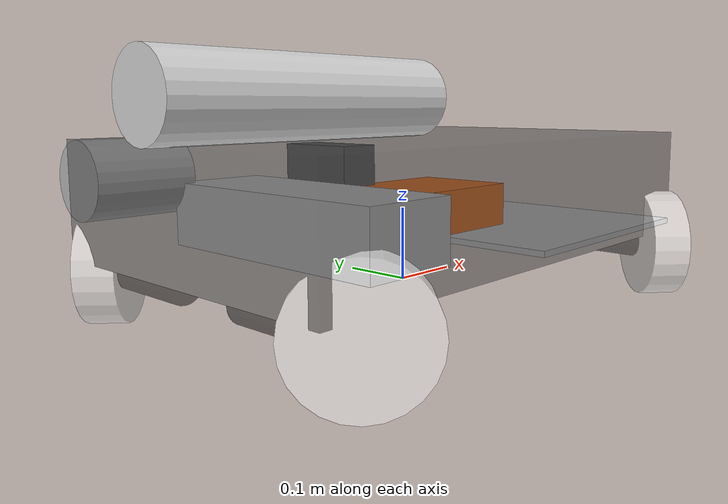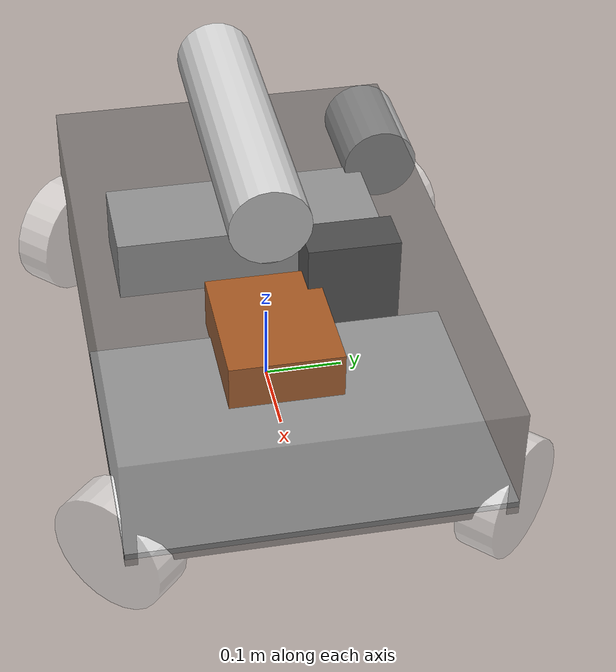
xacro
<?xml version="1.0"?>
<robot xmlns:sensor="http://playerstage.sourceforge.net/gazebo/xmlschema/#sensor"
       xmlns:controller="http://playerstage.sourceforge.net/gazebo/xmlschema/#controller"
       xmlns:interface="http://playerstage.sourceforge.net/gazebo/xmlschema/#interface"
       xmlns:xacro="http://ros.org/wiki/xacro" name="asbase">
      <xacro:include filename="$(find asdesc)/urdf/base/asbase.xacro" />
</robot>

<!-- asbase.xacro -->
<robot xmlns:sensor="http://playerstage.sourceforge.net/gazebo/xmlschema/#sensor"
	xmlns:controller="http://playerstage.sourceforge.net/gazebo/xmlschema/#controller"
	xmlns:interface="http://playerstage.sourceforge.net/gazebo/xmlschema/#interface"
	xmlns:xacro="http://ros.org/wiki/xacro">

	<!-- Link Dimensions -->
	<!-- base_link -->
	<xacro:property name="base_link_dx" value="0.72"/>
	<xacro:property name="base_link_dy" value="0.455"/>
	<xacro:property name="base_link_dz" value="0.15"/>
	<!-- 2.8kg raw frame. 3.5 estimate  full -->
	<xacro:property name="base_link_m" value="3.5"/>
	<!-- alluminium frame only -->

	<!-- wheel_link -->
	<xacro:property name="wheel_link_r" value="${0.152/2}"/>
	<xacro:property name="wheel_link_m" value="0.6"/>
	<xacro:property name="wheel_roller_angle" value="${45*M_PI/180}"/>

	<!-- motor_gearbox_link -->
	<xacro:property name="motor_link_r" value="0.025"/>
	<!-- motor normal 12 cm. But with coupler +5cm -->
	<xacro:property name="motor_link_h" value="${0.12+0.05}"/>
	<xacro:property name="motor_link_m" value="${0.14 +0.36}"/>
	<!-- True is 1460mNm -->
	<xacro:property name="motor_effort_limit" value="1.4"/>
	<!-- True is 6110rpm -->
	<xacro:property name="motor_velocity_limit" value="600"/>
	<xacro:property name="gearbox_reduction" value="91"/>

	<!-- offsets -->
	<xacro:property name="motor_wheel_assemply_xyz_fl" value="${base_link_dx/2-0.05} ${base_link_dy/2 -motor_link_h/2} -${base_link_dz/2 + motor_link_r/2}"/>
	<xacro:property name="motor_wheel_assemply_rpy_fl" value="${- M_PI/2} 0 0"/>
	<xacro:property name="motor_wheel_assemply_xyz_fr" value="${base_link_dx/2-0.05} -${base_link_dy/2 -motor_link_h/2} -${base_link_dz/2 + motor_link_r/2}"/>
	<xacro:property name="motor_wheel_assemply_rpy_fr" value="${M_PI/2} 0 0"/>
	<xacro:property name="motor_wheel_assemply_xyz_bl" value="-${base_link_dx/2-0.05} ${base_link_dy/2 -motor_link_h/2} -${base_link_dz/2 + motor_link_r/2}"/>
	<xacro:property name="motor_wheel_assemply_rpy_bl" value="${ M_PI/2} 0 ${M_PI}"/>
	<xacro:property name="motor_wheel_assemply_xyz_br" value="-${base_link_dx/2-0.05} -${base_link_dy/2 -motor_link_h/2} -${base_link_dz/2 + motor_link_r/2}"/>
	<xacro:property name="motor_wheel_assemply_rpy_br" value="${-M_PI/2} 0 ${M_PI}"/>

	<xacro:property name="ground_clearance" value="${motor_link_r/2 +wheel_link_r/2}"/>

	<!-- Import Things -->
	<xacro:include filename="$(find asdesc)/urdf/base/chasis.xacro"/>
	<xacro:include filename="$(find asdesc)/urdf/components/components.xacro"/>

	<!-- Componenet positions-->
	<xacro:property name="battery_xyz" value="-${base_link_dx/2 - 0.18} 0 -${base_link_dz/2 - 0.01 - battery_link_dz/2}"/>
	<xacro:property name="battery_rpy" value=" 0 0 ${M_PI/2}"/>

	<xacro:property name="nuc_xyz" value="-${nuc_link_dz/2} ${base_link_dy/4} 0"/>
	<xacro:property name="nuc_rpy" value=" 0 ${M_PI/2} 0"/>

	<xacro:property name="dc_box_xyz" value=" 0.05 0 -${base_link_dz/2-0.01 - dc_box_dz/2}"/>
	<xacro:property name="dc_box_rpy" value=" 0 0 0"/>

	<xacro:property name="material3_xyz" value="-${base_link_dx/4} 0 ${base_link_dz/2+0.01 + battery_link_dz/2}"/>
	<xacro:property name="material3_rpy" value="0 ${M_PI/2} 0"/>

	<xacro:property name="mount_plate_xyz" value=" ${base_link_dx/2 - mount_plate_dx/2} 0 -${ base_link_dz/2 -mount_plate_dz/2 -0.01}"/>
	<xacro:property name="mount_plate_rpy" value="0 0 0"/>

	<xacro:property name="compressor_xyz" value="-${base_link_dx/2-compressor_h/2 } ${base_link_dy/2 - compressor_r/2} ${base_link_dz/2-compressor_r }"/>
	<xacro:property name="compressor_rpy" value="0 ${M_PI/2} 0"/>

	<!-- Actual Things -->
	<xacro:as_base/>
	<xacro:battery48 parent="base_link" xyz="${battery_xyz}" rpy="${battery_rpy}" />
	<xacro:nuc parent="base_link" xyz="${nuc_xyz}" rpy="${nuc_rpy}" />
	<xacro:dc_box parent="base_link" xyz="${dc_box_xyz}" rpy="${dc_box_rpy}" />
	<xacro:mount_plate parent="base_link" xyz="${mount_plate_xyz}" rpy="${mount_plate_rpy}" />
	<xacro:compressor parent="base_link" xyz="${compressor_xyz}" rpy="${compressor_rpy}" />
	<xacro:material3 parent="base_link" xyz="${material3_xyz}" rpy="${material3_rpy}" />

</robot>

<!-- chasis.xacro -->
<robot xmlns:sensor="http://playerstage.sourceforge.net/gazebo/xmlschema/#sensor"
	xmlns:controller="http://playerstage.sourceforge.net/gazebo/xmlschema/#controller"
	xmlns:interface="http://playerstage.sourceforge.net/gazebo/xmlschema/#interface"
	xmlns:xacro="http://ros.org/wiki/xacro">

	<!-- Common -->
	<xacro:include filename="$(find asdesc)/urdf/common/inertia.xacro"/>
	<xacro:include filename="$(find asdesc)/urdf/common/materials.xacro"/>

	<xacro:macro name="as_motor_wheel_assembly" params="suffix">

		<link name="motor_gearbox${suffix}">
			<inertial>
				<origin xyz="0 0 0" rpy="0 0 0"/>
				<mass value="${motor_link_m}"/>
				<xacro:cylinder_inertia_tensor m="${motor_link_m}" r="${motor_link_r}" h="${motor_link_h}" />
			</inertial>
			<visual>
				<geometry>
					<cylinder length="${motor_link_h}" radius="${motor_link_r}"/>
				</geometry>
				<material name="BlackClear"/>
			</visual>
			<collision>
				<geometry>
					<cylinder length="${motor_link_h}" radius="${motor_link_r}"/>
				</geometry>
			</collision>
		</link>

		<joint name="motor_wheel_joint${suffix}" type="continuous">
			<parent link="motor_gearbox${suffix}"/>
			<child link="omniwheel${suffix}"/>
			<origin xyz= "0 0 ${motor_link_h/2}" rpy = "0 ${wheel_roller_angle} 0" />
			<axis xyz="0 0 1"/>
			<limit effort = "${motor_effort_limit}" velocity = "${motor_velocity_limit}" />
			<dynamics damping="1.5"/>
		</joint>

		<transmission name="motor_wheel_joint_transmission${suffix}">
			<type>transmission_interface/SimpleTransmission</type>
			<joint name="motor_wheel_joint${suffix}">
				<hardwareInterface>VelocityJointInterface</hardwareInterface>
			</joint>
			<actuator name="motor_wheel_joint_actuator${suffix}">
				<mechanicalReduction>${gearbox_reduction}</mechanicalReduction>
			</actuator>
		</transmission>

		<link name="omniwheel${suffix}">
			<inertial>
				<origin xyz="0 0 0" rpy="0 0 0"/>
				<mass value="${wheel_link_m}"/>
				<xacro:sphere_inertia_tensor m="${wheel_link_m}" r="${wheel_link_r}" />
			</inertial>
			<visual>
				<geometry>
					<cylinder radius="${wheel_link_r}" length="0.05"/>
				</geometry>
				<material name="WhiteClear"/>
			</visual>
			<collision>
				<geometry>
					<sphere radius="${wheel_link_r}"/>
				</geometry>
			</collision>

		</link>

		<gazebo reference="omniwheel${suffix}">
			<mu1 value="0.2"/>
			<mu2 value="1.5"/>
			<kp value="10000000.0" />
			<kd value="10000.0" />
			<fdir1 value="0 0 1"/>
			<maxContacts value= "1"/>
			<material>Gazebo/White</material>
		</gazebo>

	</xacro:macro>

	<xacro:macro name="as_base">

		<!-- Projection of base_link origin to xy plane -->
		<link name="base_link_footprint"/>
		<joint name="joint0" type="fixed">
			<parent link="base_link_footprint"/>
			<child link="base_link_base"/>
			<origin xyz= "0 0 ${ground_clearance}" rpy = "0 0 0" />
		</joint>
		<!-- Projection of base_link origin to bottom of baselink collision box (i.e. raised only by wheels) -->
		<link name="base_link_base"/>
		<joint name="joint1" type="fixed">
			<parent link="base_link_base"/>
			<child link="base_link"/>
			<origin xyz= "0 0 ${base_link_dz/2}" rpy = "0 0 0" />
		</joint>
		<!-- baselink -->
		<link name="base_link">
			<inertial>
				<origin xyz="0 0 0" rpy="0 0 0"/>
				<mass value="${base_link_m}"/>
				<xacro:box_inertia_tensor m="${base_link_m}" dx="${base_link_dx}" dy="${base_link_dy}" dz="${base_link_dz}"/>
			</inertial>
			<visual>
				<geometry>
					<box size="${base_link_dx} ${base_link_dy} ${base_link_dz}" />
				</geometry>
				<material name="DarkGreyClear"/>
			</visual>
			<collision>
				<geometry>
					<box size="${base_link_dx} ${base_link_dy} ${base_link_dz}" />
				</geometry>
			</collision>

			<gazebo reference="base_link">
				<material>Gazebo/DarkGrey</material>
			</gazebo>
		</link>

		<xacro:as_motor_wheel_assembly suffix="_fl"/>
		<xacro:as_motor_wheel_assembly suffix="_fr"/>
		<xacro:as_motor_wheel_assembly suffix="_bl"/>
		<xacro:as_motor_wheel_assembly suffix="_br"/>

		<joint name="motor_wheel_assembly_joint_fl" type="fixed">
			<parent link="base_link"/>
			<child link="motor_gearbox_fl"/>
			<origin xyz= "${motor_wheel_assemply_xyz_fl}" rpy = "${motor_wheel_assemply_rpy_fl}" />
		</joint>

		<joint name="motor_wheel_assembly_joint_fr" type="fixed">
			<parent link="base_link"/>
			<child link="motor_gearbox_fr"/>
			<origin xyz= "${motor_wheel_assemply_xyz_fr}" rpy = "${motor_wheel_assemply_rpy_fr}" />
		</joint>

		<joint name="motor_wheel_assembly_joint_bl" type="fixed">
			<parent link="base_link"/>
			<child link="motor_gearbox_bl"/>
			<origin xyz= "${motor_wheel_assemply_xyz_bl}" rpy = "${motor_wheel_assemply_rpy_bl}" />
		</joint>

		<joint name="motor_wheel_assembly_joint_br" type="fixed">
			<parent link="base_link"/>
			<child link="motor_gearbox_br"/>
			<origin xyz= "${motor_wheel_assemply_xyz_br}" rpy = "${motor_wheel_assemply_rpy_br}" />
		</joint>

		<gazebo>
			<plugin name="gazebo_ros_control" filename="libgazebo_ros_control.so">
				<robotNamespace>/asbase</robotNamespace>
			</plugin>
		</gazebo>

	</xacro:macro>

</robot>

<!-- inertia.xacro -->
<robot xmlns:xacro="http://ros.org/wiki/xacro">

	<xacro:property name="M_PI" value="3.1415926535897931" />

	<xacro:macro name="box_inertia_tensor" params="m dx dy dz">
		<inertia ixx="${m*(dy*dy+dz*dz)/12}" ixy="0" ixz="0" iyy="${m*(dx*dx+dz*dz)/12}" iyz="0" izz="${m*(dy*dy+dx*dx)/12}" />
	</xacro:macro>

	<xacro:macro name="cylinder_inertia_tensor" params="m r h">
		<inertia ixx="${m*(3*r*r+h*h)/12}" ixy="0" ixz="0" iyy="${m*(3*r*r+h*h)/12}" iyz="0" izz="${m*r*r/2}" />
	</xacro:macro>

	<xacro:macro name="sphere_inertia_tensor" params="m r">
		<inertia ixx="${2*m*r*r/5}" ixy="0" ixz="0" iyy="${2*m*r*r/5}" iyz="0" izz="${2*m*r*r/5}" />
	</xacro:macro>

</robot>

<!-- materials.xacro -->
<robot>
  <material name="Orange">
    <color rgba="1.0 0.4 0.0 1.0"/>
  </material>
  <material name="Grey">
    <color rgba="0.7 0.7 0.7 1.0"/>
  </material>
  <material name="DarkGrey">
    <color rgba="0.3 0.3 0.3 1.0"/>
  </material>
  <material name="White">
    <color rgba="1.0 1.0 1.0 1.0"/>
  </material>
  <material name="Black">
    <color rgba="0.0 0.0 0.0 1.0"/>
  </material>
  <material name="Red">
    <color rgba="1.0 0.0 0.0 1.0"/>
  </material>
  <material name="Green">
    <color rgba="0.0 1.0 0.0 1.0"/>
  </material>
  <material name="Blue">
    <color rgba="0.0 0.0 0.8 1.0"/>
  </material>
  <material name="LightGrey">
    <color rgba="0.82 0.82 0.82 1.0"/>
  </material>

  <material name="OrangeClear">
    <color rgba="1.0 0.4 0.0 .5"/>
  </material>
  <material name="GreyClear">
    <color rgba="0.7 0.7 0.7 .5"/>
  </material>
  <material name="DarkGreyClear">
    <color rgba="0.3 0.3 0.3 .5"/>
  </material>
  <material name="WhiteClear">
    <color rgba="1.0 1.0 1.0 .5"/>
  </material>
  <material name="BlackClear">
    <color rgba="0.0 0.0 0.0 .5"/>
  </material>
  <material name="RedClear">
    <color rgba="1.0 0.0 0.0 .5"/>
  </material>
  <material name="GreenClear">
    <color rgba="0.0 1.0 0.0 .5"/>
  </material>
  <material name="BlueClear">
    <color rgba="0.0 0.0 0.8 .5"/>
  </material>
  <material name="LightGreyClear">
    <color rgba="0.82 0.82 0.82 .5"/>
  </material>

</robot>

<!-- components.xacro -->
<robot xmlns:xacro="http://ros.org/wiki/xacro">

	<xacro:include filename="$(find asdesc)/urdf/common/generic_links.xacro"/>

	<!-- battery_link -->
	<xacro:property name="battery_link_dx" value="0.35"/>
	<xacro:property name="battery_link_dy" value="0.130"/>
	<xacro:property name="battery_link_dz" value="0.082"/>
	<xacro:property name="battery_link_m" value="6.7"/>

	<!-- nuc_link -->
	<xacro:property name="nuc_link_dx" value="0.12"/>
	<xacro:property name="nuc_link_dy" value="0.12"/>
	<xacro:property name="nuc_link_dz" value="0.06"/>
	<xacro:property name="nuc_link_m" value="0.3"/>

	<!-- DC Control box -->
	<xacro:property name="dc_box_dx" value="0.18"/>
	<xacro:property name="dc_box_dy" value="0.145"/>
	<xacro:property name="dc_box_dz" value="0.068"/>
	<xacro:property name="dc_box_m" value="1.8"/>

	<!-- Material Cylinder 3 -->
	<xacro:property name="material3_r" value="0.0525"/>
	<xacro:property name="material3_h" value="0.42"/>
	<xacro:property name="material3_m" value="${3*1760/1000}"/>

	<!-- Aluminium plate -->
	<xacro:property name="mount_plate_dx" value="${0.72/2}"/>
	<xacro:property name="mount_plate_dy" value="${0.455}"/>
	<xacro:property name="mount_plate_dz" value="0.008"/>
	<!-- Aluminium density 2.7/cm3  or 2700 kgm3-->
	<!-- About 3.5 kg aluminium plate. -->
	<xacro:property name="mount_plate_m" value="${2700*mount_plate_dx*mount_plate_dy*mount_plate_dz}"/>

	<!-- Compressor -->
	<xacro:property name="compressor_r" value="0.05"/>
	<xacro:property name="compressor_h" value="0.13"/>
	<xacro:property name="compressor_m" value="1.4"/>

	<!-- Extruder -->
	<xacro:property name="extruder_r" value="0.05"/>
	<xacro:property name="extruder_h" value="0.18"/>
	<!--Without material m 0.8  -->
	<xacro:property name="extruder_m" value="1.5"/>

	<xacro:macro name="battery48" params="parent xyz rpy">
		<xacro:generic_box name="battery48" parent="${parent}" xyz="${xyz}" rpy="${rpy}" dx="${battery_link_dx}" dy="${battery_link_dy}" dz="${battery_link_dz}" m="${battery_link_m}" material="LightGrey" gmaterial="Gazebo/LightGrey" />
	</xacro:macro>

	<xacro:macro name="nuc" params="parent xyz rpy">
		<xacro:generic_box name="nuc" parent="${parent}" xyz="${xyz}" rpy="${rpy}" dx="${nuc_link_dx}" dy="${nuc_link_dy}" dz="${nuc_link_dz}" m="${nuc_link_m}" material="DarkGrey" gmaterial="Gazebo/DarkGrey" />
	</xacro:macro>

	<xacro:macro name="dc_box" params="parent xyz rpy">
		<xacro:generic_box name="dc_box" parent="${parent}" xyz="${xyz}" rpy="${rpy}" dx="${dc_box_dx}" dy="${dc_box_dy}" dz="${dc_box_dz}" m="${dc_box_m}" material="Orange" gmaterial="Gazebo/Orange" />
	</xacro:macro>

	<xacro:macro name="mount_plate" params="parent xyz rpy">
		<xacro:generic_box name="mount_plate" parent="${parent}" xyz="${xyz}" rpy="${rpy}" dx="${mount_plate_dx}" dy="${mount_plate_dy}" dz="${mount_plate_dz}" m="${mount_plate_m}" material="LightGrey" gmaterial="Gazebo/LightGrey" />
	</xacro:macro>

	<xacro:macro name="compressor" params="parent xyz rpy">
		<xacro:generic_cylinder name="compressor" parent="${parent}" xyz="${xyz}" rpy="${rpy}" r="${compressor_r}" h="${compressor_h}" m="${compressor_m}" material="Grey" gmaterial="Gazebo/Grey" />
	</xacro:macro>

	<!-- Extruder should not be macro. Probably own file -->
	<xacro:macro name="extruder" params="parent xyz rpy">
		<xacro:generic_cylinder name="extruder" parent="${parent}" xyz="${xyz}" rpy="${rpy}" r="${extruder_r}" h="${extruder_h}" m="${extruder_m}" material="Red" gmaterial="Gazebo/Red" />
	</xacro:macro>

	<xacro:macro name="material3" params="parent xyz rpy">
		<xacro:generic_cylinder name="material3" parent="${parent}" xyz="${xyz}" rpy="${rpy}" r="${material3_r}" h="${material3_h}" m="${material3_m}" material="LightGrey" gmaterial="Gazebo/LightGrey" />
	</xacro:macro>

</robot>

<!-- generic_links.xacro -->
<robot xmlns:xacro="http://ros.org/wiki/xacro">

    <xacro:macro name="generic_box" params="parent name xyz rpy dx dy dz m material gmaterial">

        <joint name="${name}_joint" type="fixed">
            <parent link="${parent}"/>
            <child link="${name}_link"/>
            <origin xyz= "${xyz}" rpy = "${rpy}" />
        </joint>

        <link name="${name}_link">
            <inertial>
                <origin xyz="0 0 0" rpy="0 0 0"/>
                <mass value="${m}"/>
                <xacro:box_inertia_tensor m="${m}" dx="${dx}" dy="${dy}" dz="${dz}"/>
            </inertial>
            <visual>
                <geometry>
                    <box size="${dx} ${dy} ${dz}" />
                </geometry>
                <material name="${material}"/>
            </visual>
            <collision>
                <geometry>
                    <box size="${dx} ${dy} ${dz}" />
                </geometry>
            </collision>

        </link>
        <gazebo reference="${name}_link">
            <material>${gmaterial}</material>
        </gazebo>
    </xacro:macro>

    <xacro:macro name="generic_cylinder" params="parent name xyz rpy r h m material gmaterial">

        <joint name="${name}_joint" type="fixed">
            <parent link="${parent}"/>
            <child link="${name}_link"/>
            <origin xyz= "${xyz}" rpy = "${rpy}" />
        </joint>

        <link name="${name}_link">
            <inertial>
                <origin xyz="0 0 0" rpy="0 0 0"/>
                <mass value="${m}"/>
                <xacro:cylinder_inertia_tensor m="${m}" r="${r}" h="${h}"/>
            </inertial>
            <visual>
                <geometry>
                    <cylinder radius="${r}" length="${h}" />
                </geometry>
                <material name="${material}"/>
            </visual>
            <collision>
                <geometry>
                    <cylinder radius="${r}" length="${h}" />
                </geometry>
            </collision>

        </link>
        <gazebo reference="${name}_link">
            <material>${gmaterial}</material>
        </gazebo>
    </xacro:macro>

</robot>
